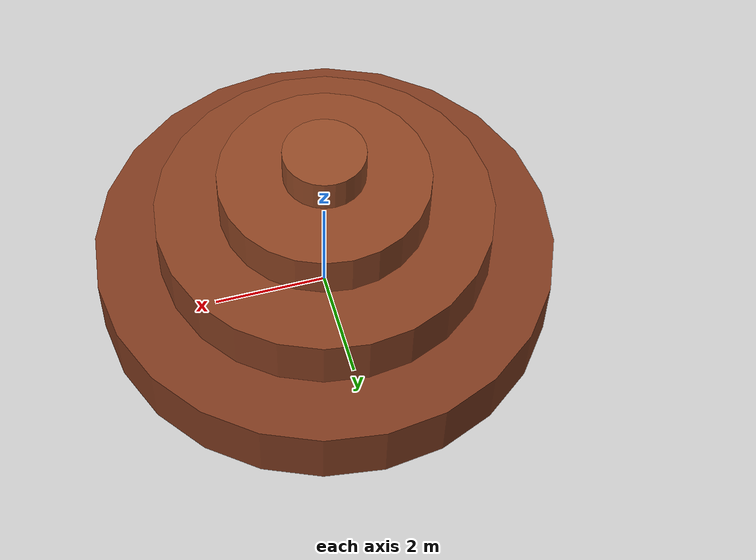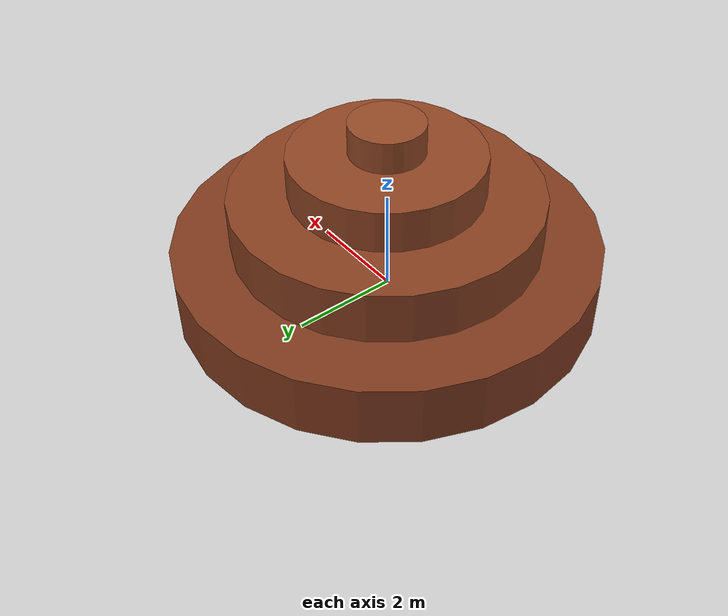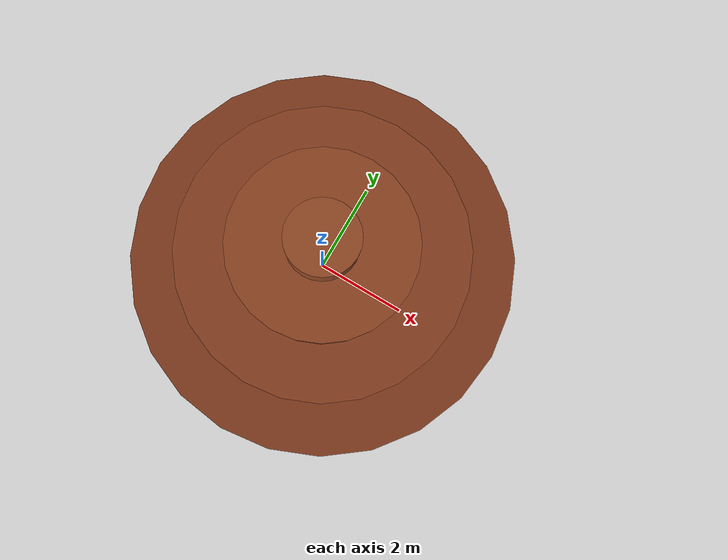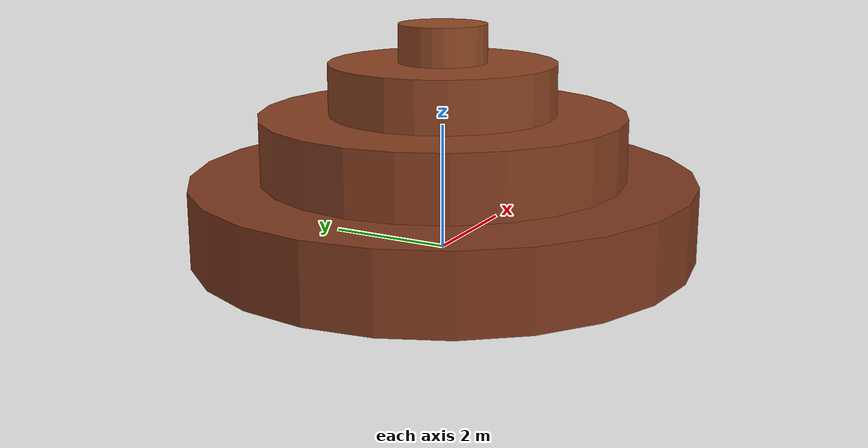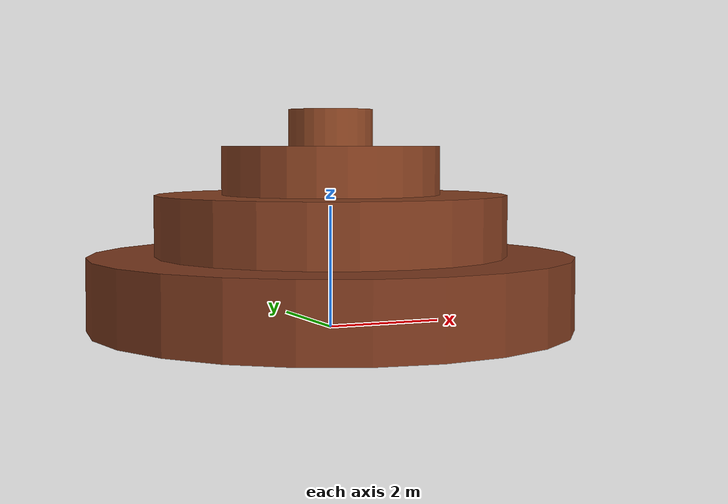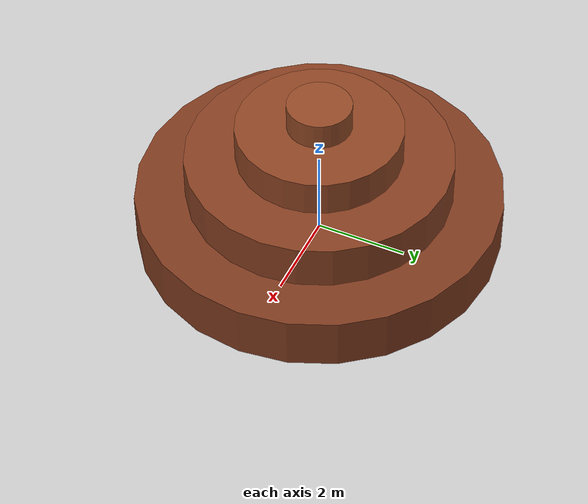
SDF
<?xml version="1.0" ?>
<sdf version="1.9">
  <model name="ore_stockpile">
    <static>true</static>
    <link name="pile">
      <collision name="c0">
        <pose>0 0 0.6 0 0 0</pose>
        <geometry><cylinder><radius>4.0</radius><length>1.2</length></cylinder></geometry>
      </collision>
      <visual name="v0">
        <pose>0 0 0.6 0 0 0</pose>
        <geometry><cylinder><radius>4.0</radius><length>1.2</length></cylinder></geometry>
        <material><ambient>0.42 0.19 0.1 1</ambient><diffuse>0.5 0.23 0.12 1</diffuse></material>
      </visual>

      <collision name="c1">
        <pose>0 0 1.7 0 0 0</pose>
        <geometry><cylinder><radius>2.9</radius><length>1.0</length></cylinder></geometry>
      </collision>
      <visual name="v1">
        <pose>0 0 1.7 0 0 0</pose>
        <geometry><cylinder><radius>2.9</radius><length>1.0</length></cylinder></geometry>
        <material><ambient>0.45 0.21 0.11 1</ambient><diffuse>0.53 0.25 0.13 1</diffuse></material>
      </visual>

      <collision name="c2">
        <pose>0 0 2.6 0 0 0</pose>
        <geometry><cylinder><radius>1.8</radius><length>0.8</length></cylinder></geometry>
      </collision>
      <visual name="v2">
        <pose>0 0 2.6 0 0 0</pose>
        <geometry><cylinder><radius>1.8</radius><length>0.8</length></cylinder></geometry>
        <material><ambient>0.48 0.23 0.12 1</ambient><diffuse>0.56 0.27 0.14 1</diffuse></material>
      </visual>

      <collision name="c3">
        <pose>0 0 3.3 0 0 0</pose>
        <geometry><cylinder><radius>0.7</radius><length>0.6</length></cylinder></geometry>
      </collision>
      <visual name="v3">
        <pose>0 0 3.3 0 0 0</pose>
        <geometry><cylinder><radius>0.7</radius><length>0.6</length></cylinder></geometry>
        <material><ambient>0.5 0.25 0.13 1</ambient><diffuse>0.58 0.29 0.15 1</diffuse></material>
      </visual>
    </link>
  </model>
</sdf>
